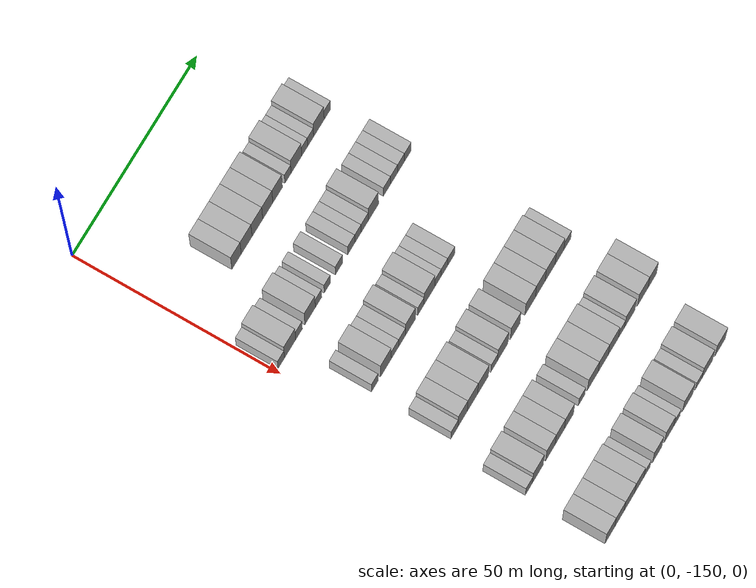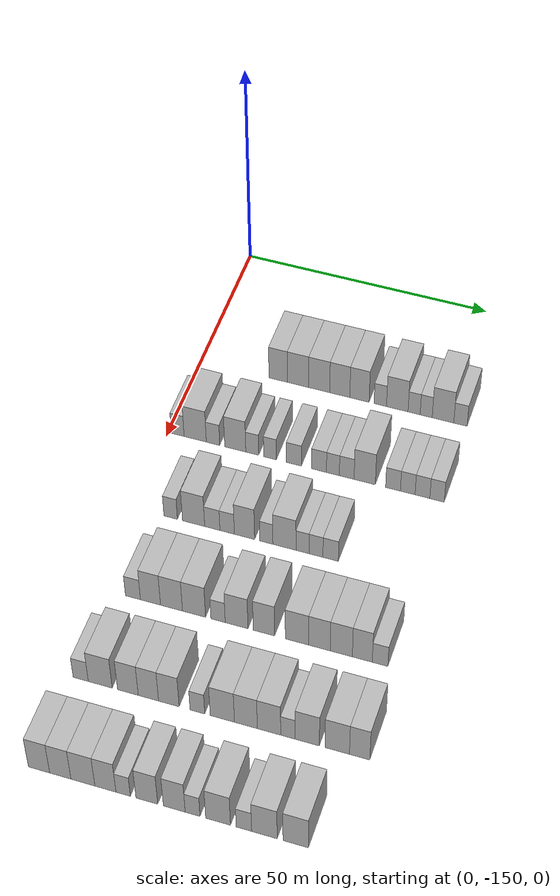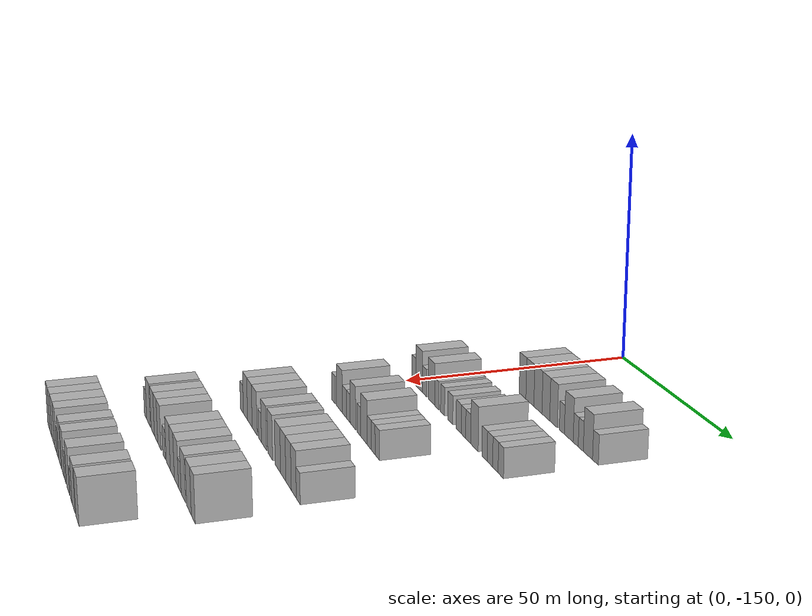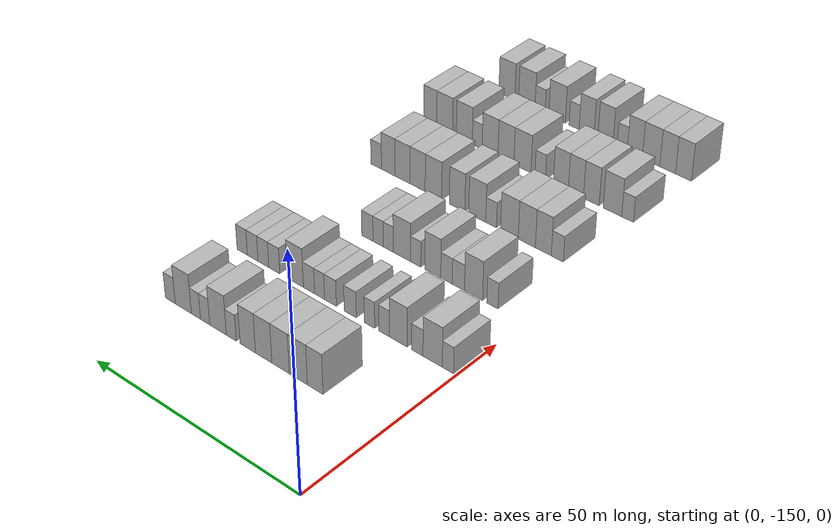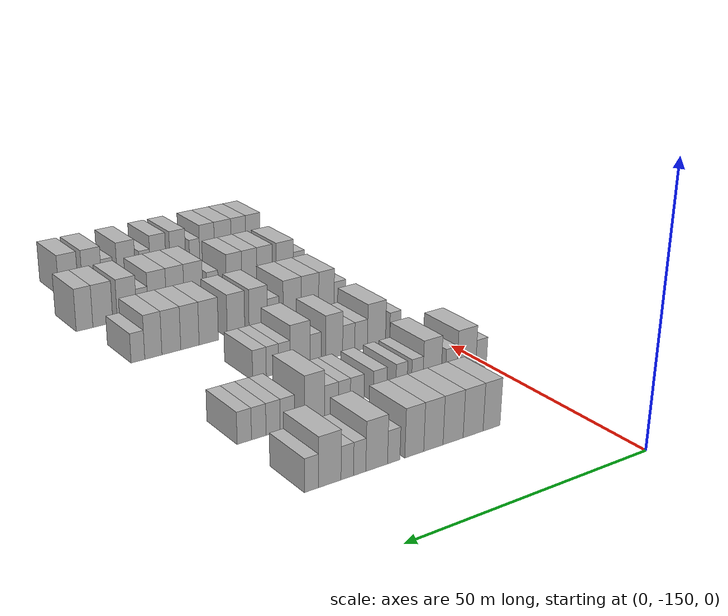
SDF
<sdf version="1.6">
 <world name="default">
  <model name="building_44">
   <static>1</static>
   <pose>25.0000 -134.0810 0 0.000000 0.000000 0.000000</pose>
   <link name="link">
    <pose>0 0 4.50 0 0 0</pose>
    <collision name="collision"><geometry><box><size>10.0000 3.7732 9.0000</size></box></geometry></collision>
    <visual name="visual">
     <cast_shadows>0</cast_shadows>
     <geometry><box><size>10.0000 3.7732 9.0000</size></box></geometry>
     <material>
      <script>
       <uri>model://HANNAS_wall/materials/scripts</uri>
       <uri>model://HANNAS_wall/materials/textures</uri>
       <name>vrc/HANNAS_wall</name>
      </script>
     </material>
    </visual>
   </link>
  </model>
  <model name="building_45">
   <static>1</static>
   <pose>25.0000 -130.0135 0 0.000000 0.000000 0.000000</pose>
   <link name="link">
    <pose>0 0 4.50 0 0 0</pose>
    <collision name="collision"><geometry><box><size>10.0000 4.3618 9.0000</size></box></geometry></collision>
    <visual name="visual">
     <cast_shadows>0</cast_shadows>
     <geometry><box><size>10.0000 4.3618 9.0000</size></box></geometry>
     <material>
      <script>
       <uri>model://HANNAS_wall/materials/scripts</uri>
       <uri>model://HANNAS_wall/materials/textures</uri>
       <name>vrc/HANNAS_wall</name>
      </script>
     </material>
    </visual>
   </link>
  </model>
  <model name="building_46">
   <static>1</static>
   <pose>25.0000 -125.6773 0 0.000000 0.000000 0.000000</pose>
   <link name="link">
    <pose>0 0 4.50 0 0 0</pose>
    <collision name="collision"><geometry><box><size>10.0000 4.3106 9.0000</size></box></geometry></collision>
    <visual name="visual">
     <cast_shadows>0</cast_shadows>
     <geometry><box><size>10.0000 4.3106 9.0000</size></box></geometry>
     <material>
      <script>
       <uri>model://HANNAS_wall/materials/scripts</uri>
       <uri>model://HANNAS_wall/materials/textures</uri>
       <name>vrc/HANNAS_wall</name>
      </script>
     </material>
    </visual>
   </link>
  </model>
  <model name="building_47">
   <static>1</static>
   <pose>25.0000 -121.4867 0 0.000000 0.000000 0.000000</pose>
   <link name="link">
    <pose>0 0 4.50 0 0 0</pose>
    <collision name="collision"><geometry><box><size>10.0000 4.0704 9.0000</size></box></geometry></collision>
    <visual name="visual">
     <cast_shadows>0</cast_shadows>
     <geometry><box><size>10.0000 4.0704 9.0000</size></box></geometry>
     <material>
      <script>
       <uri>model://HANNAS_wall/materials/scripts</uri>
       <uri>model://HANNAS_wall/materials/textures</uri>
       <name>vrc/HANNAS_wall</name>
      </script>
     </material>
    </visual>
   </link>
  </model>
  <model name="building_48">
   <static>1</static>
   <pose>25.0000 -117.4990 0 0.000000 0.000000 0.000000</pose>
   <link name="link">
    <pose>0 0 4.50 0 0 0</pose>
    <collision name="collision"><geometry><box><size>10.0000 3.9050 9.0000</size></box></geometry></collision>
    <visual name="visual">
     <cast_shadows>0</cast_shadows>
     <geometry><box><size>10.0000 3.9050 9.0000</size></box></geometry>
     <material>
      <script>
       <uri>model://HANNAS_wall/materials/scripts</uri>
       <uri>model://HANNAS_wall/materials/textures</uri>
       <name>vrc/HANNAS_wall</name>
      </script>
     </material>
    </visual>
   </link>
  </model>
  <model name="building_49">
   <static>1</static>
   <pose>25.0000 -113.2902 0 0.000000 0.000000 0.000000</pose>
   <link name="link">
    <pose>0 0 3.00 0 0 0</pose>
    <collision name="collision"><geometry><box><size>10.0000 2.5126 6.0000</size></box></geometry></collision>
    <visual name="visual">
     <cast_shadows>0</cast_shadows>
     <geometry><box><size>10.0000 2.5126 6.0000</size></box></geometry>
     <material>
      <script>
       <uri>model://HANNAS_wall/materials/scripts</uri>
       <uri>model://HANNAS_wall/materials/textures</uri>
       <name>vrc/HANNAS_wall</name>
      </script>
     </material>
    </visual>
   </link>
  </model>
  <model name="building_50">
   <static>1</static>
   <pose>25.0000 -109.8700 0 0.000000 0.000000 0.000000</pose>
   <link name="link">
    <pose>0 0 4.50 0 0 0</pose>
    <collision name="collision"><geometry><box><size>10.0000 4.3278 9.0000</size></box></geometry></collision>
    <visual name="visual">
     <cast_shadows>0</cast_shadows>
     <geometry><box><size>10.0000 4.3278 9.0000</size></box></geometry>
     <material>
      <script>
       <uri>model://HANNAS_wall/materials/scripts</uri>
       <uri>model://HANNAS_wall/materials/textures</uri>
       <name>vrc/HANNAS_wall</name>
      </script>
     </material>
    </visual>
   </link>
  </model>
  <model name="building_51">
   <static>1</static>
   <pose>25.0000 -106.4946 0 0.000000 0.000000 0.000000</pose>
   <link name="link">
    <pose>0 0 3.00 0 0 0</pose>
    <collision name="collision"><geometry><box><size>10.0000 2.4230 6.0000</size></box></geometry></collision>
    <visual name="visual">
     <cast_shadows>0</cast_shadows>
     <geometry><box><size>10.0000 2.4230 6.0000</size></box></geometry>
     <material>
      <script>
       <uri>model://HANNAS_wall/materials/scripts</uri>
       <uri>model://HANNAS_wall/materials/textures</uri>
       <name>vrc/HANNAS_wall</name>
      </script>
     </material>
    </visual>
   </link>
  </model>
  <model name="building_52">
   <static>1</static>
   <pose>25.0000 -104.0772 0 0.000000 0.000000 0.000000</pose>
   <link name="link">
    <pose>0 0 3.00 0 0 0</pose>
    <collision name="collision"><geometry><box><size>10.0000 2.4118 6.0000</size></box></geometry></collision>
    <visual name="visual">
     <cast_shadows>0</cast_shadows>
     <geometry><box><size>10.0000 2.4118 6.0000</size></box></geometry>
     <material>
      <script>
       <uri>model://HANNAS_wall/materials/scripts</uri>
       <uri>model://HANNAS_wall/materials/textures</uri>
       <name>vrc/HANNAS_wall</name>
      </script>
     </material>
    </visual>
   </link>
  </model>
  <model name="building_53">
   <static>1</static>
   <pose>25.0000 -100.7231 0 0.000000 0.000000 0.000000</pose>
   <link name="link">
    <pose>0 0 4.50 0 0 0</pose>
    <collision name="collision"><geometry><box><size>10.0000 4.2964 9.0000</size></box></geometry></collision>
    <visual name="visual">
     <cast_shadows>0</cast_shadows>
     <geometry><box><size>10.0000 4.2964 9.0000</size></box></geometry>
     <material>
      <script>
       <uri>model://HANNAS_wall/materials/scripts</uri>
       <uri>model://HANNAS_wall/materials/textures</uri>
       <name>vrc/HANNAS_wall</name>
      </script>
     </material>
    </visual>
   </link>
  </model>
  <model name="building_54">
   <static>1</static>
   <pose>25.0000 -97.2485 0 0.000000 0.000000 0.000000</pose>
   <link name="link">
    <pose>0 0 3.00 0 0 0</pose>
    <collision name="collision"><geometry><box><size>10.0000 2.6529 6.0000</size></box></geometry></collision>
    <visual name="visual">
     <cast_shadows>0</cast_shadows>
     <geometry><box><size>10.0000 2.6529 6.0000</size></box></geometry>
     <material>
      <script>
       <uri>model://HANNAS_wall/materials/scripts</uri>
       <uri>model://HANNAS_wall/materials/textures</uri>
       <name>vrc/HANNAS_wall</name>
      </script>
     </material>
    </visual>
   </link>
  </model>
  <model name="building_217">
   <static>1</static>
   <pose>44.0000 -148.0433 0 0.000000 0.000000 0.000000</pose>
   <link name="link">
    <pose>0 0 3.00 0 0 0</pose>
    <collision name="collision"><geometry><box><size>10.0000 2.6148 6.0000</size></box></geometry></collision>
    <visual name="visual">
     <cast_shadows>0</cast_shadows>
     <geometry><box><size>10.0000 2.6148 6.0000</size></box></geometry>
     <material>
      <script>
       <uri>model://HANNAS_wall/materials/scripts</uri>
       <uri>model://HANNAS_wall/materials/textures</uri>
       <name>vrc/HANNAS_wall</name>
      </script>
     </material>
    </visual>
   </link>
  </model>
  <model name="building_218">
   <static>1</static>
   <pose>44.0000 -144.4863 0 0.000000 0.000000 0.000000</pose>
   <link name="link">
    <pose>0 0 4.50 0 0 0</pose>
    <collision name="collision"><geometry><box><size>10.0000 4.4993 9.0000</size></box></geometry></collision>
    <visual name="visual">
     <cast_shadows>0</cast_shadows>
     <geometry><box><size>10.0000 4.4993 9.0000</size></box></geometry>
     <material>
      <script>
       <uri>model://HANNAS_wall/materials/scripts</uri>
       <uri>model://HANNAS_wall/materials/textures</uri>
       <name>vrc/HANNAS_wall</name>
      </script>
     </material>
    </visual>
   </link>
  </model>
  <model name="building_219">
   <static>1</static>
   <pose>44.0000 -140.8836 0 0.000000 0.000000 0.000000</pose>
   <link name="link">
    <pose>0 0 3.00 0 0 0</pose>
    <collision name="collision"><geometry><box><size>10.0000 2.7062 6.0000</size></box></geometry></collision>
    <visual name="visual">
     <cast_shadows>0</cast_shadows>
     <geometry><box><size>10.0000 2.7062 6.0000</size></box></geometry>
     <material>
      <script>
       <uri>model://HANNAS_wall/materials/scripts</uri>
       <uri>model://HANNAS_wall/materials/textures</uri>
       <name>vrc/HANNAS_wall</name>
      </script>
     </material>
    </visual>
   </link>
  </model>
  <model name="building_220">
   <static>1</static>
   <pose>44.0000 -136.4042 0 0.000000 0.000000 0.000000</pose>
   <link name="link">
    <pose>0 0 4.50 0 0 0</pose>
    <collision name="collision"><geometry><box><size>10.0000 4.2526 9.0000</size></box></geometry></collision>
    <visual name="visual">
     <cast_shadows>0</cast_shadows>
     <geometry><box><size>10.0000 4.2526 9.0000</size></box></geometry>
     <material>
      <script>
       <uri>model://HANNAS_wall/materials/scripts</uri>
       <uri>model://HANNAS_wall/materials/textures</uri>
       <name>vrc/HANNAS_wall</name>
      </script>
     </material>
    </visual>
   </link>
  </model>
  <model name="building_221">
   <static>1</static>
   <pose>44.0000 -132.9853 0 0.000000 0.000000 0.000000</pose>
   <link name="link">
    <pose>0 0 3.00 0 0 0</pose>
    <collision name="collision"><geometry><box><size>10.0000 2.5852 6.0000</size></box></geometry></collision>
    <visual name="visual">
     <cast_shadows>0</cast_shadows>
     <geometry><box><size>10.0000 2.5852 6.0000</size></box></geometry>
     <material>
      <script>
       <uri>model://HANNAS_wall/materials/scripts</uri>
       <uri>model://HANNAS_wall/materials/textures</uri>
       <name>vrc/HANNAS_wall</name>
      </script>
     </material>
    </visual>
   </link>
  </model>
  <model name="building_222">
   <static>1</static>
   <pose>44.0000 -129.4300 0 0.000000 0.000000 0.000000</pose>
   <link name="link">
    <pose>0 0 3.00 0 0 0</pose>
    <collision name="collision"><geometry><box><size>10.0000 2.5255 6.0000</size></box></geometry></collision>
    <visual name="visual">
     <cast_shadows>0</cast_shadows>
     <geometry><box><size>10.0000 2.5255 6.0000</size></box></geometry>
     <material>
      <script>
       <uri>model://HANNAS_wall/materials/scripts</uri>
       <uri>model://HANNAS_wall/materials/textures</uri>
       <name>vrc/HANNAS_wall</name>
      </script>
     </material>
    </visual>
   </link>
  </model>
  <model name="building_223">
   <static>1</static>
   <pose>44.0000 -124.6755 0 0.000000 0.000000 0.000000</pose>
   <link name="link">
    <pose>0 0 3.00 0 0 0</pose>
    <collision name="collision"><geometry><box><size>10.0000 2.9834 6.0000</size></box></geometry></collision>
    <visual name="visual">
     <cast_shadows>0</cast_shadows>
     <geometry><box><size>10.0000 2.9834 6.0000</size></box></geometry>
     <material>
      <script>
       <uri>model://HANNAS_wall/materials/scripts</uri>
       <uri>model://HANNAS_wall/materials/textures</uri>
       <name>vrc/HANNAS_wall</name>
      </script>
     </material>
    </visual>
   </link>
  </model>
  <model name="building_224">
   <static>1</static>
   <pose>44.0000 -119.7070 0 0.000000 0.000000 0.000000</pose>
   <link name="link">
    <pose>0 0 3.00 0 0 0</pose>
    <collision name="collision"><geometry><box><size>10.0000 2.9537 6.0000</size></box></geometry></collision>
    <visual name="visual">
     <cast_shadows>0</cast_shadows>
     <geometry><box><size>10.0000 2.9537 6.0000</size></box></geometry>
     <material>
      <script>
       <uri>model://HANNAS_wall/materials/scripts</uri>
       <uri>model://HANNAS_wall/materials/textures</uri>
       <name>vrc/HANNAS_wall</name>
      </script>
     </material>
    </visual>
   </link>
  </model>
  <model name="building_225">
   <static>1</static>
   <pose>44.0000 -116.9564 0 0.000000 0.000000 0.000000</pose>
   <link name="link">
    <pose>0 0 3.00 0 0 0</pose>
    <collision name="collision"><geometry><box><size>10.0000 2.5475 6.0000</size></box></geometry></collision>
    <visual name="visual">
     <cast_shadows>0</cast_shadows>
     <geometry><box><size>10.0000 2.5475 6.0000</size></box></geometry>
     <material>
      <script>
       <uri>model://HANNAS_wall/materials/scripts</uri>
       <uri>model://HANNAS_wall/materials/textures</uri>
       <name>vrc/HANNAS_wall</name>
      </script>
     </material>
    </visual>
   </link>
  </model>
  <model name="building_226">
   <static>1</static>
   <pose>44.0000 -114.2364 0 0.000000 0.000000 0.000000</pose>
   <link name="link">
    <pose>0 0 3.00 0 0 0</pose>
    <collision name="collision"><geometry><box><size>10.0000 2.8924 6.0000</size></box></geometry></collision>
    <visual name="visual">
     <cast_shadows>0</cast_shadows>
     <geometry><box><size>10.0000 2.8924 6.0000</size></box></geometry>
     <material>
      <script>
       <uri>model://HANNAS_wall/materials/scripts</uri>
       <uri>model://HANNAS_wall/materials/textures</uri>
       <name>vrc/HANNAS_wall</name>
      </script>
     </material>
    </visual>
   </link>
  </model>
  <model name="building_227">
   <static>1</static>
   <pose>44.0000 -110.7053 0 0.000000 0.000000 0.000000</pose>
   <link name="link">
    <pose>0 0 4.50 0 0 0</pose>
    <collision name="collision"><geometry><box><size>10.0000 4.1699 9.0000</size></box></geometry></collision>
    <visual name="visual">
     <cast_shadows>0</cast_shadows>
     <geometry><box><size>10.0000 4.1699 9.0000</size></box></geometry>
     <material>
      <script>
       <uri>model://HANNAS_wall/materials/scripts</uri>
       <uri>model://HANNAS_wall/materials/textures</uri>
       <name>vrc/HANNAS_wall</name>
      </script>
     </material>
    </visual>
   </link>
  </model>
  <model name="building_228">
   <static>1</static>
   <pose>44.0000 -105.1719 0 0.000000 0.000000 0.000000</pose>
   <link name="link">
    <pose>0 0 3.00 0 0 0</pose>
    <collision name="collision"><geometry><box><size>10.0000 2.8968 6.0000</size></box></geometry></collision>
    <visual name="visual">
     <cast_shadows>0</cast_shadows>
     <geometry><box><size>10.0000 2.8968 6.0000</size></box></geometry>
     <material>
      <script>
       <uri>model://HANNAS_wall/materials/scripts</uri>
       <uri>model://HANNAS_wall/materials/textures</uri>
       <name>vrc/HANNAS_wall</name>
      </script>
     </material>
    </visual>
   </link>
  </model>
  <model name="building_229">
   <static>1</static>
   <pose>44.0000 -102.3004 0 0.000000 0.000000 0.000000</pose>
   <link name="link">
    <pose>0 0 3.00 0 0 0</pose>
    <collision name="collision"><geometry><box><size>10.0000 2.8462 6.0000</size></box></geometry></collision>
    <visual name="visual">
     <cast_shadows>0</cast_shadows>
     <geometry><box><size>10.0000 2.8462 6.0000</size></box></geometry>
     <material>
      <script>
       <uri>model://HANNAS_wall/materials/scripts</uri>
       <uri>model://HANNAS_wall/materials/textures</uri>
       <name>vrc/HANNAS_wall</name>
      </script>
     </material>
    </visual>
   </link>
  </model>
  <model name="building_230">
   <static>1</static>
   <pose>44.0000 -99.4468 0 0.000000 0.000000 0.000000</pose>
   <link name="link">
    <pose>0 0 3.00 0 0 0</pose>
    <collision name="collision"><geometry><box><size>10.0000 2.8609 6.0000</size></box></geometry></collision>
    <visual name="visual">
     <cast_shadows>0</cast_shadows>
     <geometry><box><size>10.0000 2.8609 6.0000</size></box></geometry>
     <material>
      <script>
       <uri>model://HANNAS_wall/materials/scripts</uri>
       <uri>model://HANNAS_wall/materials/textures</uri>
       <name>vrc/HANNAS_wall</name>
      </script>
     </material>
    </visual>
   </link>
  </model>
  <model name="building_231">
   <static>1</static>
   <pose>44.0000 -96.6186 0 0.000000 0.000000 0.000000</pose>
   <link name="link">
    <pose>0 0 3.00 0 0 0</pose>
    <collision name="collision"><geometry><box><size>10.0000 2.7954 6.0000</size></box></geometry></collision>
    <visual name="visual">
     <cast_shadows>0</cast_shadows>
     <geometry><box><size>10.0000 2.7954 6.0000</size></box></geometry>
     <material>
      <script>
       <uri>model://HANNAS_wall/materials/scripts</uri>
       <uri>model://HANNAS_wall/materials/textures</uri>
       <name>vrc/HANNAS_wall</name>
      </script>
     </material>
    </visual>
   </link>
  </model>
  <model name="building_381">
   <static>1</static>
   <pose>63.0000 -142.5158 0 0.000000 0.000000 0.000000</pose>
   <link name="link">
    <pose>0 0 3.00 0 0 0</pose>
    <collision name="collision"><geometry><box><size>10.0000 2.6586 6.0000</size></box></geometry></collision>
    <visual name="visual">
     <cast_shadows>0</cast_shadows>
     <geometry><box><size>10.0000 2.6586 6.0000</size></box></geometry>
     <material>
      <script>
       <uri>model://HANNAS_wall/materials/scripts</uri>
       <uri>model://HANNAS_wall/materials/textures</uri>
       <name>vrc/HANNAS_wall</name>
      </script>
     </material>
    </visual>
   </link>
  </model>
  <model name="building_382">
   <static>1</static>
   <pose>63.0000 -138.0122 0 0.000000 0.000000 0.000000</pose>
   <link name="link">
    <pose>0 0 4.50 0 0 0</pose>
    <collision name="collision"><geometry><box><size>10.0000 4.3486 9.0000</size></box></geometry></collision>
    <visual name="visual">
     <cast_shadows>0</cast_shadows>
     <geometry><box><size>10.0000 4.3486 9.0000</size></box></geometry>
     <material>
      <script>
       <uri>model://HANNAS_wall/materials/scripts</uri>
       <uri>model://HANNAS_wall/materials/textures</uri>
       <name>vrc/HANNAS_wall</name>
      </script>
     </material>
    </visual>
   </link>
  </model>
  <model name="building_383">
   <static>1</static>
   <pose>63.0000 -134.3442 0 0.000000 0.000000 0.000000</pose>
   <link name="link">
    <pose>0 0 3.00 0 0 0</pose>
    <collision name="collision"><geometry><box><size>10.0000 2.9873 6.0000</size></box></geometry></collision>
    <visual name="visual">
     <cast_shadows>0</cast_shadows>
     <geometry><box><size>10.0000 2.9873 6.0000</size></box></geometry>
     <material>
      <script>
       <uri>model://HANNAS_wall/materials/scripts</uri>
       <uri>model://HANNAS_wall/materials/textures</uri>
       <name>vrc/HANNAS_wall</name>
      </script>
     </material>
    </visual>
   </link>
  </model>
  <model name="building_384">
   <static>1</static>
   <pose>63.0000 -131.4405 0 0.000000 0.000000 0.000000</pose>
   <link name="link">
    <pose>0 0 3.00 0 0 0</pose>
    <collision name="collision"><geometry><box><size>10.0000 2.8201 6.0000</size></box></geometry></collision>
    <visual name="visual">
     <cast_shadows>0</cast_shadows>
     <geometry><box><size>10.0000 2.8201 6.0000</size></box></geometry>
     <material>
      <script>
       <uri>model://HANNAS_wall/materials/scripts</uri>
       <uri>model://HANNAS_wall/materials/textures</uri>
       <name>vrc/HANNAS_wall</name>
      </script>
     </material>
    </visual>
   </link>
  </model>
  <model name="building_385">
   <static>1</static>
   <pose>63.0000 -128.0593 0 0.000000 0.000000 0.000000</pose>
   <link name="link">
    <pose>0 0 4.50 0 0 0</pose>
    <collision name="collision"><geometry><box><size>10.0000 3.9423 9.0000</size></box></geometry></collision>
    <visual name="visual">
     <cast_shadows>0</cast_shadows>
     <geometry><box><size>10.0000 3.9423 9.0000</size></box></geometry>
     <material>
      <script>
       <uri>model://HANNAS_wall/materials/scripts</uri>
       <uri>model://HANNAS_wall/materials/textures</uri>
       <name>vrc/HANNAS_wall</name>
      </script>
     </material>
    </visual>
   </link>
  </model>
  <model name="building_386">
   <static>1</static>
   <pose>63.0000 -123.8252 0 0.000000 0.000000 0.000000</pose>
   <link name="link">
    <pose>0 0 3.00 0 0 0</pose>
    <collision name="collision"><geometry><box><size>10.0000 2.5260 6.0000</size></box></geometry></collision>
    <visual name="visual">
     <cast_shadows>0</cast_shadows>
     <geometry><box><size>10.0000 2.5260 6.0000</size></box></geometry>
     <material>
      <script>
       <uri>model://HANNAS_wall/materials/scripts</uri>
       <uri>model://HANNAS_wall/materials/textures</uri>
       <name>vrc/HANNAS_wall</name>
      </script>
     </material>
    </visual>
   </link>
  </model>
  <model name="building_387">
   <static>1</static>
   <pose>63.0000 -120.3366 0 0.000000 0.000000 0.000000</pose>
   <link name="link">
    <pose>0 0 4.50 0 0 0</pose>
    <collision name="collision"><geometry><box><size>10.0000 4.4514 9.0000</size></box></geometry></collision>
    <visual name="visual">
     <cast_shadows>0</cast_shadows>
     <geometry><box><size>10.0000 4.4514 9.0000</size></box></geometry>
     <material>
      <script>
       <uri>model://HANNAS_wall/materials/scripts</uri>
       <uri>model://HANNAS_wall/materials/textures</uri>
       <name>vrc/HANNAS_wall</name>
      </script>
     </material>
    </visual>
   </link>
  </model>
  <model name="building_388">
   <static>1</static>
   <pose>63.0000 -116.8610 0 0.000000 0.000000 0.000000</pose>
   <link name="link">
    <pose>0 0 3.00 0 0 0</pose>
    <collision name="collision"><geometry><box><size>10.0000 2.4998 6.0000</size></box></geometry></collision>
    <visual name="visual">
     <cast_shadows>0</cast_shadows>
     <geometry><box><size>10.0000 2.4998 6.0000</size></box></geometry>
     <material>
      <script>
       <uri>model://HANNAS_wall/materials/scripts</uri>
       <uri>model://HANNAS_wall/materials/textures</uri>
       <name>vrc/HANNAS_wall</name>
      </script>
     </material>
    </visual>
   </link>
  </model>
  <model name="building_389">
   <static>1</static>
   <pose>63.0000 -114.2732 0 0.000000 0.000000 0.000000</pose>
   <link name="link">
    <pose>0 0 3.00 0 0 0</pose>
    <collision name="collision"><geometry><box><size>10.0000 2.6757 6.0000</size></box></geometry></collision>
    <visual name="visual">
     <cast_shadows>0</cast_shadows>
     <geometry><box><size>10.0000 2.6757 6.0000</size></box></geometry>
     <material>
      <script>
       <uri>model://HANNAS_wall/materials/scripts</uri>
       <uri>model://HANNAS_wall/materials/textures</uri>
       <name>vrc/HANNAS_wall</name>
      </script>
     </material>
    </visual>
   </link>
  </model>
  <model name="building_390">
   <static>1</static>
   <pose>63.0000 -111.4620 0 0.000000 0.000000 0.000000</pose>
   <link name="link">
    <pose>0 0 3.00 0 0 0</pose>
    <collision name="collision"><geometry><box><size>10.0000 2.9467 6.0000</size></box></geometry></collision>
    <visual name="visual">
     <cast_shadows>0</cast_shadows>
     <geometry><box><size>10.0000 2.9467 6.0000</size></box></geometry>
     <material>
      <script>
       <uri>model://HANNAS_wall/materials/scripts</uri>
       <uri>model://HANNAS_wall/materials/textures</uri>
       <name>vrc/HANNAS_wall</name>
      </script>
     </material>
    </visual>
   </link>
  </model>
  <model name="building_548">
   <static>1</static>
   <pose>82.0000 -142.7718 0 0.000000 0.000000 0.000000</pose>
   <link name="link">
    <pose>0 0 3.00 0 0 0</pose>
    <collision name="collision"><geometry><box><size>10.0000 2.8766 6.0000</size></box></geometry></collision>
    <visual name="visual">
     <cast_shadows>0</cast_shadows>
     <geometry><box><size>10.0000 2.8766 6.0000</size></box></geometry>
     <material>
      <script>
       <uri>model://HANNAS_wall/materials/scripts</uri>
       <uri>model://HANNAS_wall/materials/textures</uri>
       <name>vrc/HANNAS_wall</name>
      </script>
     </material>
    </visual>
   </link>
  </model>
  <model name="building_549">
   <static>1</static>
   <pose>82.0000 -139.4159 0 0.000000 0.000000 0.000000</pose>
   <link name="link">
    <pose>0 0 4.50 0 0 0</pose>
    <collision name="collision"><geometry><box><size>10.0000 3.8352 9.0000</size></box></geometry></collision>
    <visual name="visual">
     <cast_shadows>0</cast_shadows>
     <geometry><box><size>10.0000 3.8352 9.0000</size></box></geometry>
     <material>
      <script>
       <uri>model://HANNAS_wall/materials/scripts</uri>
       <uri>model://HANNAS_wall/materials/textures</uri>
       <name>vrc/HANNAS_wall</name>
      </script>
     </material>
    </visual>
   </link>
  </model>
  <model name="building_550">
   <static>1</static>
   <pose>82.0000 -135.4012 0 0.000000 0.000000 0.000000</pose>
   <link name="link">
    <pose>0 0 4.50 0 0 0</pose>
    <collision name="collision"><geometry><box><size>10.0000 4.1942 9.0000</size></box></geometry></collision>
    <visual name="visual">
     <cast_shadows>0</cast_shadows>
     <geometry><box><size>10.0000 4.1942 9.0000</size></box></geometry>
     <material>
      <script>
       <uri>model://HANNAS_wall/materials/scripts</uri>
       <uri>model://HANNAS_wall/materials/textures</uri>
       <name>vrc/HANNAS_wall</name>
      </script>
     </material>
    </visual>
   </link>
  </model>
  <model name="building_551">
   <static>1</static>
   <pose>82.0000 -131.1138 0 0.000000 0.000000 0.000000</pose>
   <link name="link">
    <pose>0 0 4.50 0 0 0</pose>
    <collision name="collision"><geometry><box><size>10.0000 4.3806 9.0000</size></box></geometry></collision>
    <visual name="visual">
     <cast_shadows>0</cast_shadows>
     <geometry><box><size>10.0000 4.3806 9.0000</size></box></geometry>
     <material>
      <script>
       <uri>model://HANNAS_wall/materials/scripts</uri>
       <uri>model://HANNAS_wall/materials/textures</uri>
       <name>vrc/HANNAS_wall</name>
      </script>
     </material>
    </visual>
   </link>
  </model>
  <model name="building_552">
   <static>1</static>
   <pose>82.0000 -126.5647 0 0.000000 0.000000 0.000000</pose>
   <link name="link">
    <pose>0 0 3.00 0 0 0</pose>
    <collision name="collision"><geometry><box><size>10.0000 2.7176 6.0000</size></box></geometry></collision>
    <visual name="visual">
     <cast_shadows>0</cast_shadows>
     <geometry><box><size>10.0000 2.7176 6.0000</size></box></geometry>
     <material>
      <script>
       <uri>model://HANNAS_wall/materials/scripts</uri>
       <uri>model://HANNAS_wall/materials/textures</uri>
       <name>vrc/HANNAS_wall</name>
      </script>
     </material>
    </visual>
   </link>
  </model>
  <model name="building_553">
   <static>1</static>
   <pose>82.0000 -123.0640 0 0.000000 0.000000 0.000000</pose>
   <link name="link">
    <pose>0 0 4.50 0 0 0</pose>
    <collision name="collision"><geometry><box><size>10.0000 4.2838 9.0000</size></box></geometry></collision>
    <visual name="visual">
     <cast_shadows>0</cast_shadows>
     <geometry><box><size>10.0000 4.2838 9.0000</size></box></geometry>
     <material>
      <script>
       <uri>model://HANNAS_wall/materials/scripts</uri>
       <uri>model://HANNAS_wall/materials/textures</uri>
       <name>vrc/HANNAS_wall</name>
      </script>
     </material>
    </visual>
   </link>
  </model>
  <model name="building_554">
   <static>1</static>
   <pose>82.0000 -117.9266 0 0.000000 0.000000 0.000000</pose>
   <link name="link">
    <pose>0 0 4.50 0 0 0</pose>
    <collision name="collision"><geometry><box><size>10.0000 3.9911 9.0000</size></box></geometry></collision>
    <visual name="visual">
     <cast_shadows>0</cast_shadows>
     <geometry><box><size>10.0000 3.9911 9.0000</size></box></geometry>
     <material>
      <script>
       <uri>model://HANNAS_wall/materials/scripts</uri>
       <uri>model://HANNAS_wall/materials/textures</uri>
       <name>vrc/HANNAS_wall</name>
      </script>
     </material>
    </visual>
   </link>
  </model>
  <model name="building_555">
   <static>1</static>
   <pose>82.0000 -111.7755 0 0.000000 0.000000 0.000000</pose>
   <link name="link">
    <pose>0 0 4.50 0 0 0</pose>
    <collision name="collision"><geometry><box><size>10.0000 4.3110 9.0000</size></box></geometry></collision>
    <visual name="visual">
     <cast_shadows>0</cast_shadows>
     <geometry><box><size>10.0000 4.3110 9.0000</size></box></geometry>
     <material>
      <script>
       <uri>model://HANNAS_wall/materials/scripts</uri>
       <uri>model://HANNAS_wall/materials/textures</uri>
       <name>vrc/HANNAS_wall</name>
      </script>
     </material>
    </visual>
   </link>
  </model>
  <model name="building_556">
   <static>1</static>
   <pose>82.0000 -107.6092 0 0.000000 0.000000 0.000000</pose>
   <link name="link">
    <pose>0 0 4.50 0 0 0</pose>
    <collision name="collision"><geometry><box><size>10.0000 4.0216 9.0000</size></box></geometry></collision>
    <visual name="visual">
     <cast_shadows>0</cast_shadows>
     <geometry><box><size>10.0000 4.0216 9.0000</size></box></geometry>
     <material>
      <script>
       <uri>model://HANNAS_wall/materials/scripts</uri>
       <uri>model://HANNAS_wall/materials/textures</uri>
       <name>vrc/HANNAS_wall</name>
      </script>
     </material>
    </visual>
   </link>
  </model>
  <model name="building_557">
   <static>1</static>
   <pose>82.0000 -103.5603 0 0.000000 0.000000 0.000000</pose>
   <link name="link">
    <pose>0 0 4.50 0 0 0</pose>
    <collision name="collision"><geometry><box><size>10.0000 4.0762 9.0000</size></box></geometry></collision>
    <visual name="visual">
     <cast_shadows>0</cast_shadows>
     <geometry><box><size>10.0000 4.0762 9.0000</size></box></geometry>
     <material>
      <script>
       <uri>model://HANNAS_wall/materials/scripts</uri>
       <uri>model://HANNAS_wall/materials/textures</uri>
       <name>vrc/HANNAS_wall</name>
      </script>
     </material>
    </visual>
   </link>
  </model>
  <model name="building_558">
   <static>1</static>
   <pose>82.0000 -99.6959 0 0.000000 0.000000 0.000000</pose>
   <link name="link">
    <pose>0 0 4.50 0 0 0</pose>
    <collision name="collision"><geometry><box><size>10.0000 3.6525 9.0000</size></box></geometry></collision>
    <visual name="visual">
     <cast_shadows>0</cast_shadows>
     <geometry><box><size>10.0000 3.6525 9.0000</size></box></geometry>
     <material>
      <script>
       <uri>model://HANNAS_wall/materials/scripts</uri>
       <uri>model://HANNAS_wall/materials/textures</uri>
       <name>vrc/HANNAS_wall</name>
      </script>
     </material>
    </visual>
   </link>
  </model>
  <model name="building_559">
   <static>1</static>
   <pose>82.0000 -96.4329 0 0.000000 0.000000 0.000000</pose>
   <link name="link">
    <pose>0 0 3.00 0 0 0</pose>
    <collision name="collision"><geometry><box><size>10.0000 2.8735 6.0000</size></box></geometry></collision>
    <visual name="visual">
     <cast_shadows>0</cast_shadows>
     <geometry><box><size>10.0000 2.8735 6.0000</size></box></geometry>
     <material>
      <script>
       <uri>model://HANNAS_wall/materials/scripts</uri>
       <uri>model://HANNAS_wall/materials/textures</uri>
       <name>vrc/HANNAS_wall</name>
      </script>
     </material>
    </visual>
   </link>
  </model>
  <model name="building_722">
   <static>1</static>
   <pose>101.0000 -145.3271 0 0.000000 0.000000 0.000000</pose>
   <link name="link">
    <pose>0 0 3.00 0 0 0</pose>
    <collision name="collision"><geometry><box><size>10.0000 2.8294 6.0000</size></box></geometry></collision>
    <visual name="visual">
     <cast_shadows>0</cast_shadows>
     <geometry><box><size>10.0000 2.8294 6.0000</size></box></geometry>
     <material>
      <script>
       <uri>model://HANNAS_wall/materials/scripts</uri>
       <uri>model://HANNAS_wall/materials/textures</uri>
       <name>vrc/HANNAS_wall</name>
      </script>
     </material>
    </visual>
   </link>
  </model>
  <model name="building_723">
   <static>1</static>
   <pose>101.0000 -141.6766 0 0.000000 0.000000 0.000000</pose>
   <link name="link">
    <pose>0 0 4.50 0 0 0</pose>
    <collision name="collision"><geometry><box><size>10.0000 4.4715 9.0000</size></box></geometry></collision>
    <visual name="visual">
     <cast_shadows>0</cast_shadows>
     <geometry><box><size>10.0000 4.4715 9.0000</size></box></geometry>
     <material>
      <script>
       <uri>model://HANNAS_wall/materials/scripts</uri>
       <uri>model://HANNAS_wall/materials/textures</uri>
       <name>vrc/HANNAS_wall</name>
      </script>
     </material>
    </visual>
   </link>
  </model>
  <model name="building_724">
   <static>1</static>
   <pose>101.0000 -136.5194 0 0.000000 0.000000 0.000000</pose>
   <link name="link">
    <pose>0 0 4.50 0 0 0</pose>
    <collision name="collision"><geometry><box><size>10.0000 3.8430 9.0000</size></box></geometry></collision>
    <visual name="visual">
     <cast_shadows>0</cast_shadows>
     <geometry><box><size>10.0000 3.8430 9.0000</size></box></geometry>
     <material>
      <script>
       <uri>model://HANNAS_wall/materials/scripts</uri>
       <uri>model://HANNAS_wall/materials/textures</uri>
       <name>vrc/HANNAS_wall</name>
      </script>
     </material>
    </visual>
   </link>
  </model>
  <model name="building_725">
   <static>1</static>
   <pose>101.0000 -132.7192 0 0.000000 0.000000 0.000000</pose>
   <link name="link">
    <pose>0 0 4.50 0 0 0</pose>
    <collision name="collision"><geometry><box><size>10.0000 3.7572 9.0000</size></box></geometry></collision>
    <visual name="visual">
     <cast_shadows>0</cast_shadows>
     <geometry><box><size>10.0000 3.7572 9.0000</size></box></geometry>
     <material>
      <script>
       <uri>model://HANNAS_wall/materials/scripts</uri>
       <uri>model://HANNAS_wall/materials/textures</uri>
       <name>vrc/HANNAS_wall</name>
      </script>
     </material>
    </visual>
   </link>
  </model>
  <model name="building_726">
   <static>1</static>
   <pose>101.0000 -128.9402 0 0.000000 0.000000 0.000000</pose>
   <link name="link">
    <pose>0 0 4.50 0 0 0</pose>
    <collision name="collision"><geometry><box><size>10.0000 3.8009 9.0000</size></box></geometry></collision>
    <visual name="visual">
     <cast_shadows>0</cast_shadows>
     <geometry><box><size>10.0000 3.8009 9.0000</size></box></geometry>
     <material>
      <script>
       <uri>model://HANNAS_wall/materials/scripts</uri>
       <uri>model://HANNAS_wall/materials/textures</uri>
       <name>vrc/HANNAS_wall</name>
      </script>
     </material>
    </visual>
   </link>
  </model>
  <model name="building_727">
   <static>1</static>
   <pose>101.0000 -123.6941 0 0.000000 0.000000 0.000000</pose>
   <link name="link">
    <pose>0 0 3.00 0 0 0</pose>
    <collision name="collision"><geometry><box><size>10.0000 2.6912 6.0000</size></box></geometry></collision>
    <visual name="visual">
     <cast_shadows>0</cast_shadows>
     <geometry><box><size>10.0000 2.6912 6.0000</size></box></geometry>
     <material>
      <script>
       <uri>model://HANNAS_wall/materials/scripts</uri>
       <uri>model://HANNAS_wall/materials/textures</uri>
       <name>vrc/HANNAS_wall</name>
      </script>
     </material>
    </visual>
   </link>
  </model>
  <model name="building_728">
   <static>1</static>
   <pose>101.0000 -119.1371 0 0.000000 0.000000 0.000000</pose>
   <link name="link">
    <pose>0 0 4.50 0 0 0</pose>
    <collision name="collision"><geometry><box><size>10.0000 4.4228 9.0000</size></box></geometry></collision>
    <visual name="visual">
     <cast_shadows>0</cast_shadows>
     <geometry><box><size>10.0000 4.4228 9.0000</size></box></geometry>
     <material>
      <script>
       <uri>model://HANNAS_wall/materials/scripts</uri>
       <uri>model://HANNAS_wall/materials/textures</uri>
       <name>vrc/HANNAS_wall</name>
      </script>
     </material>
    </visual>
   </link>
  </model>
  <model name="building_729">
   <static>1</static>
   <pose>101.0000 -114.8473 0 0.000000 0.000000 0.000000</pose>
   <link name="link">
    <pose>0 0 4.50 0 0 0</pose>
    <collision name="collision"><geometry><box><size>10.0000 4.1569 9.0000</size></box></geometry></collision>
    <visual name="visual">
     <cast_shadows>0</cast_shadows>
     <geometry><box><size>10.0000 4.1569 9.0000</size></box></geometry>
     <material>
      <script>
       <uri>model://HANNAS_wall/materials/scripts</uri>
       <uri>model://HANNAS_wall/materials/textures</uri>
       <name>vrc/HANNAS_wall</name>
      </script>
     </material>
    </visual>
   </link>
  </model>
  <model name="building_730">
   <static>1</static>
   <pose>101.0000 -110.6548 0 0.000000 0.000000 0.000000</pose>
   <link name="link">
    <pose>0 0 4.50 0 0 0</pose>
    <collision name="collision"><geometry><box><size>10.0000 4.2281 9.0000</size></box></geometry></collision>
    <visual name="visual">
     <cast_shadows>0</cast_shadows>
     <geometry><box><size>10.0000 4.2281 9.0000</size></box></geometry>
     <material>
      <script>
       <uri>model://HANNAS_wall/materials/scripts</uri>
       <uri>model://HANNAS_wall/materials/textures</uri>
       <name>vrc/HANNAS_wall</name>
      </script>
     </material>
    </visual>
   </link>
  </model>
  <model name="building_731">
   <static>1</static>
   <pose>101.0000 -107.2393 0 0.000000 0.000000 0.000000</pose>
   <link name="link">
    <pose>0 0 3.00 0 0 0</pose>
    <collision name="collision"><geometry><box><size>10.0000 2.6029 6.0000</size></box></geometry></collision>
    <visual name="visual">
     <cast_shadows>0</cast_shadows>
     <geometry><box><size>10.0000 2.6029 6.0000</size></box></geometry>
     <material>
      <script>
       <uri>model://HANNAS_wall/materials/scripts</uri>
       <uri>model://HANNAS_wall/materials/textures</uri>
       <name>vrc/HANNAS_wall</name>
      </script>
     </material>
    </visual>
   </link>
  </model>
  <model name="building_732">
   <static>1</static>
   <pose>101.0000 -103.7721 0 0.000000 0.000000 0.000000</pose>
   <link name="link">
    <pose>0 0 4.50 0 0 0</pose>
    <collision name="collision"><geometry><box><size>10.0000 4.3316 9.0000</size></box></geometry></collision>
    <visual name="visual">
     <cast_shadows>0</cast_shadows>
     <geometry><box><size>10.0000 4.3316 9.0000</size></box></geometry>
     <material>
      <script>
       <uri>model://HANNAS_wall/materials/scripts</uri>
       <uri>model://HANNAS_wall/materials/textures</uri>
       <name>vrc/HANNAS_wall</name>
      </script>
     </material>
    </visual>
   </link>
  </model>
  <model name="building_733">
   <static>1</static>
   <pose>101.0000 -98.4190 0 0.000000 0.000000 0.000000</pose>
   <link name="link">
    <pose>0 0 4.50 0 0 0</pose>
    <collision name="collision"><geometry><box><size>10.0000 4.3746 9.0000</size></box></geometry></collision>
    <visual name="visual">
     <cast_shadows>0</cast_shadows>
     <geometry><box><size>10.0000 4.3746 9.0000</size></box></geometry>
     <material>
      <script>
       <uri>model://HANNAS_wall/materials/scripts</uri>
       <uri>model://HANNAS_wall/materials/textures</uri>
       <name>vrc/HANNAS_wall</name>
      </script>
     </material>
    </visual>
   </link>
  </model>
  <model name="building_734">
   <static>1</static>
   <pose>101.0000 -94.4233 0 0.000000 0.000000 0.000000</pose>
   <link name="link">
    <pose>0 0 4.50 0 0 0</pose>
    <collision name="collision"><geometry><box><size>10.0000 3.6168 9.0000</size></box></geometry></collision>
    <visual name="visual">
     <cast_shadows>0</cast_shadows>
     <geometry><box><size>10.0000 3.6168 9.0000</size></box></geometry>
     <material>
      <script>
       <uri>model://HANNAS_wall/materials/scripts</uri>
       <uri>model://HANNAS_wall/materials/textures</uri>
       <name>vrc/HANNAS_wall</name>
      </script>
     </material>
    </visual>
   </link>
  </model>
  <model name="building_891">
   <static>1</static>
   <pose>120.0000 -145.3607 0 0.000000 0.000000 0.000000</pose>
   <link name="link">
    <pose>0 0 4.50 0 0 0</pose>
    <collision name="collision"><geometry><box><size>10.0000 3.8871 9.0000</size></box></geometry></collision>
    <visual name="visual">
     <cast_shadows>0</cast_shadows>
     <geometry><box><size>10.0000 3.8871 9.0000</size></box></geometry>
     <material>
      <script>
       <uri>model://HANNAS_wall/materials/scripts</uri>
       <uri>model://HANNAS_wall/materials/textures</uri>
       <name>vrc/HANNAS_wall</name>
      </script>
     </material>
    </visual>
   </link>
  </model>
  <model name="building_892">
   <static>1</static>
   <pose>120.0000 -141.4909 0 0.000000 0.000000 0.000000</pose>
   <link name="link">
    <pose>0 0 4.50 0 0 0</pose>
    <collision name="collision"><geometry><box><size>10.0000 3.8525 9.0000</size></box></geometry></collision>
    <visual name="visual">
     <cast_shadows>0</cast_shadows>
     <geometry><box><size>10.0000 3.8525 9.0000</size></box></geometry>
     <material>
      <script>
       <uri>model://HANNAS_wall/materials/scripts</uri>
       <uri>model://HANNAS_wall/materials/textures</uri>
       <name>vrc/HANNAS_wall</name>
      </script>
     </material>
    </visual>
   </link>
  </model>
  <model name="building_893">
   <static>1</static>
   <pose>120.0000 -137.3931 0 0.000000 0.000000 0.000000</pose>
   <link name="link">
    <pose>0 0 4.50 0 0 0</pose>
    <collision name="collision"><geometry><box><size>10.0000 4.3432 9.0000</size></box></geometry></collision>
    <visual name="visual">
     <cast_shadows>0</cast_shadows>
     <geometry><box><size>10.0000 4.3432 9.0000</size></box></geometry>
     <material>
      <script>
       <uri>model://HANNAS_wall/materials/scripts</uri>
       <uri>model://HANNAS_wall/materials/textures</uri>
       <name>vrc/HANNAS_wall</name>
      </script>
     </material>
    </visual>
   </link>
  </model>
  <model name="building_894">
   <static>1</static>
   <pose>120.0000 -133.3256 0 0.000000 0.000000 0.000000</pose>
   <link name="link">
    <pose>0 0 4.50 0 0 0</pose>
    <collision name="collision"><geometry><box><size>10.0000 3.7918 9.0000</size></box></geometry></collision>
    <visual name="visual">
     <cast_shadows>0</cast_shadows>
     <geometry><box><size>10.0000 3.7918 9.0000</size></box></geometry>
     <material>
      <script>
       <uri>model://HANNAS_wall/materials/scripts</uri>
       <uri>model://HANNAS_wall/materials/textures</uri>
       <name>vrc/HANNAS_wall</name>
      </script>
     </material>
    </visual>
   </link>
  </model>
  <model name="building_895">
   <static>1</static>
   <pose>120.0000 -130.1364 0 0.000000 0.000000 0.000000</pose>
   <link name="link">
    <pose>0 0 3.00 0 0 0</pose>
    <collision name="collision"><geometry><box><size>10.0000 2.5866 6.0000</size></box></geometry></collision>
    <visual name="visual">
     <cast_shadows>0</cast_shadows>
     <geometry><box><size>10.0000 2.5866 6.0000</size></box></geometry>
     <material>
      <script>
       <uri>model://HANNAS_wall/materials/scripts</uri>
       <uri>model://HANNAS_wall/materials/textures</uri>
       <name>vrc/HANNAS_wall</name>
      </script>
     </material>
    </visual>
   </link>
  </model>
  <model name="building_896">
   <static>1</static>
   <pose>120.0000 -125.8966 0 0.000000 0.000000 0.000000</pose>
   <link name="link">
    <pose>0 0 4.50 0 0 0</pose>
    <collision name="collision"><geometry><box><size>10.0000 3.8929 9.0000</size></box></geometry></collision>
    <visual name="visual">
     <cast_shadows>0</cast_shadows>
     <geometry><box><size>10.0000 3.8929 9.0000</size></box></geometry>
     <material>
      <script>
       <uri>model://HANNAS_wall/materials/scripts</uri>
       <uri>model://HANNAS_wall/materials/textures</uri>
       <name>vrc/HANNAS_wall</name>
      </script>
     </material>
    </visual>
   </link>
  </model>
  <model name="building_897">
   <static>1</static>
   <pose>120.0000 -121.0093 0 0.000000 0.000000 0.000000</pose>
   <link name="link">
    <pose>0 0 4.50 0 0 0</pose>
    <collision name="collision"><geometry><box><size>10.0000 3.8817 9.0000</size></box></geometry></collision>
    <visual name="visual">
     <cast_shadows>0</cast_shadows>
     <geometry><box><size>10.0000 3.8817 9.0000</size></box></geometry>
     <material>
      <script>
       <uri>model://HANNAS_wall/materials/scripts</uri>
       <uri>model://HANNAS_wall/materials/textures</uri>
       <name>vrc/HANNAS_wall</name>
      </script>
     </material>
    </visual>
   </link>
  </model>
  <model name="building_898">
   <static>1</static>
   <pose>120.0000 -117.7568 0 0.000000 0.000000 0.000000</pose>
   <link name="link">
    <pose>0 0 3.00 0 0 0</pose>
    <collision name="collision"><geometry><box><size>10.0000 2.6232 6.0000</size></box></geometry></collision>
    <visual name="visual">
     <cast_shadows>0</cast_shadows>
     <geometry><box><size>10.0000 2.6232 6.0000</size></box></geometry>
     <material>
      <script>
       <uri>model://HANNAS_wall/materials/scripts</uri>
       <uri>model://HANNAS_wall/materials/textures</uri>
       <name>vrc/HANNAS_wall</name>
      </script>
     </material>
    </visual>
   </link>
  </model>
  <model name="building_899">
   <static>1</static>
   <pose>120.0000 -113.2600 0 0.000000 0.000000 0.000000</pose>
   <link name="link">
    <pose>0 0 4.50 0 0 0</pose>
    <collision name="collision"><geometry><box><size>10.0000 4.3704 9.0000</size></box></geometry></collision>
    <visual name="visual">
     <cast_shadows>0</cast_shadows>
     <geometry><box><size>10.0000 4.3704 9.0000</size></box></geometry>
     <material>
      <script>
       <uri>model://HANNAS_wall/materials/scripts</uri>
       <uri>model://HANNAS_wall/materials/textures</uri>
       <name>vrc/HANNAS_wall</name>
      </script>
     </material>
    </visual>
   </link>
  </model>
  <model name="building_900">
   <static>1</static>
   <pose>120.0000 -108.7199 0 0.000000 0.000000 0.000000</pose>
   <link name="link">
    <pose>0 0 3.00 0 0 0</pose>
    <collision name="collision"><geometry><box><size>10.0000 2.7099 6.0000</size></box></geometry></collision>
    <visual name="visual">
     <cast_shadows>0</cast_shadows>
     <geometry><box><size>10.0000 2.7099 6.0000</size></box></geometry>
     <material>
      <script>
       <uri>model://HANNAS_wall/materials/scripts</uri>
       <uri>model://HANNAS_wall/materials/textures</uri>
       <name>vrc/HANNAS_wall</name>
      </script>
     </material>
    </visual>
   </link>
  </model>
  <model name="building_901">
   <static>1</static>
   <pose>120.0000 -105.1320 0 0.000000 0.000000 0.000000</pose>
   <link name="link">
    <pose>0 0 4.50 0 0 0</pose>
    <collision name="collision"><geometry><box><size>10.0000 4.4658 9.0000</size></box></geometry></collision>
    <visual name="visual">
     <cast_shadows>0</cast_shadows>
     <geometry><box><size>10.0000 4.4658 9.0000</size></box></geometry>
     <material>
      <script>
       <uri>model://HANNAS_wall/materials/scripts</uri>
       <uri>model://HANNAS_wall/materials/textures</uri>
       <name>vrc/HANNAS_wall</name>
      </script>
     </material>
    </visual>
   </link>
  </model>
  <model name="building_902">
   <static>1</static>
   <pose>120.0000 -99.6896 0 0.000000 0.000000 0.000000</pose>
   <link name="link">
    <pose>0 0 4.50 0 0 0</pose>
    <collision name="collision"><geometry><box><size>10.0000 4.4190 9.0000</size></box></geometry></collision>
    <visual name="visual">
     <cast_shadows>0</cast_shadows>
     <geometry><box><size>10.0000 4.4190 9.0000</size></box></geometry>
     <material>
      <script>
       <uri>model://HANNAS_wall/materials/scripts</uri>
       <uri>model://HANNAS_wall/materials/textures</uri>
       <name>vrc/HANNAS_wall</name>
      </script>
     </material>
    </visual>
   </link>
  </model>
 </world>
</sdf>
